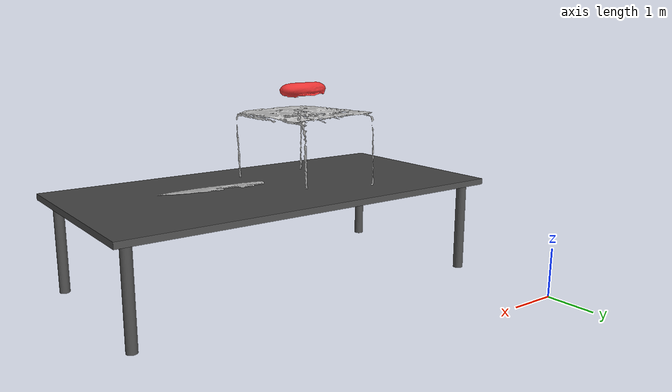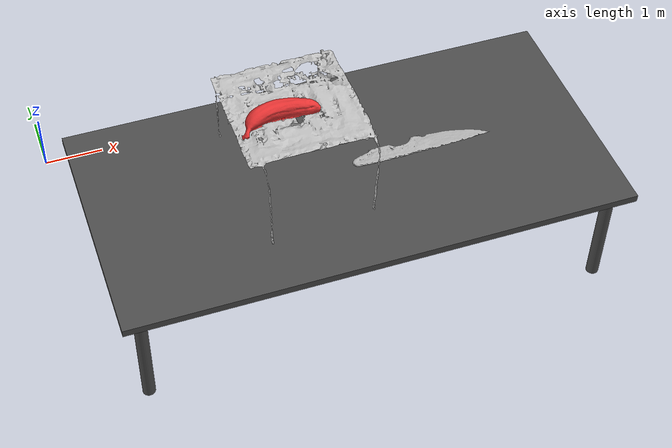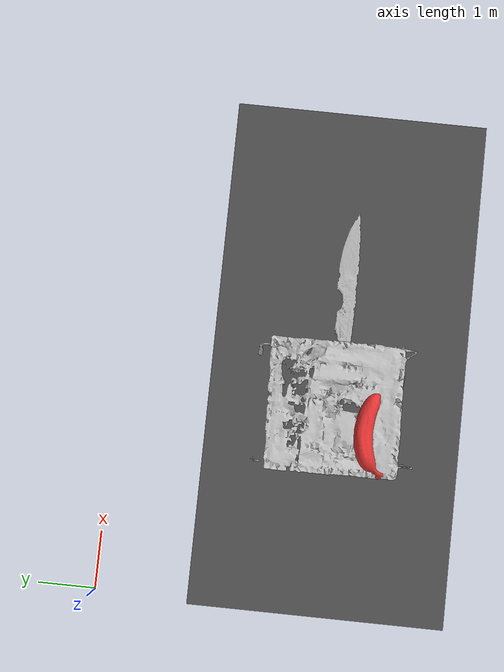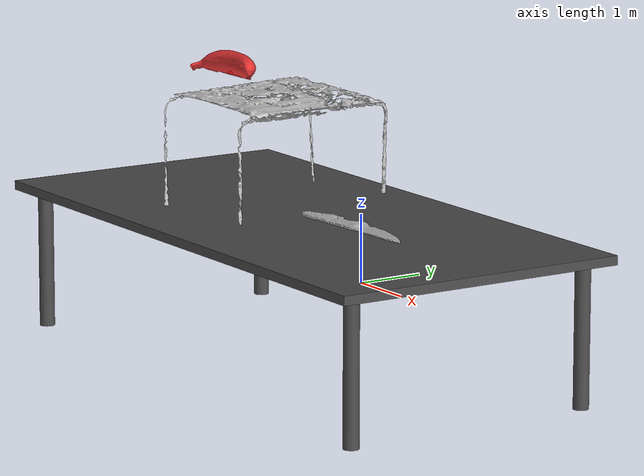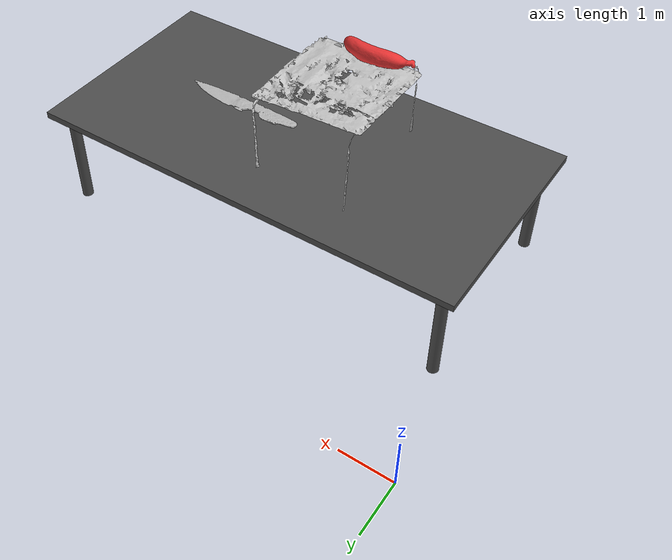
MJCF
<mujoco model="table_knife_strawberry">
  <compiler
      meshdir=""
      angle="radian"
      coordinate="local"
      strippath="false"
      discardvisual="false"
      inertiafromgeom="true" />

  <option gravity="0 0 -9.81"
          integrator="RK4"
          timestep="0.001"
          cone="pyramidal"
          impratio="5"
          tolerance="1e-8">
    <flag warmstart="enable"/>
  </option>

  <asset>
    <texture name="texplane" type="2d" builtin="checker" width="512" height="512"
             rgb1="0.82 0.84 0.87" rgb2="0.92 0.93 0.95"/>
    <material name="matplane" texture="texplane" texrepeat="4 4" reflectance="0.1"/>
    <!-- Replace these with your actual mesh paths -->
    <mesh name="table_mesh"      file="meshes/table.stl"/>
    <mesh name="knife_mesh"      file="meshes/knife.stl"/>
    <mesh name="strawberry_mesh" file="meshes/banana.stl"/>

    <material name="mat_table"      rgba="0.75 0.75 0.75 1"/>
    <material name="mat_knife"      rgba="0.70 0.70 0.70 1"/>
    <material name="mat_strawberry" rgba="0.90 0.20 0.20 1"/>
  </asset>

  <default>
    <!-- Default contact settings (copied from your file) -->
    <geom friction="2.5 1 1"
          solref="0.002 1"
          solimp="0.95 0.99 0.001"
          condim="4"
          contype="1"
          conaffinity="1"/>
  </default>

  <worldbody>

    <!-- TABLE (typically static)  -->

    <light name="fill_light" pos="-1.0 -1.2 1.2" dir="0.6 0.6 -1" directional="true" diffuse="0.6 0.6 0.6"/>

    <body name="table_base" pos="4.2 -3.7 2.1" quat="1 0 0 0">

      <geom name="table" type="box" size="4.0000 2.0000 0.0600" rgba="0.3 0.3 0.3 1" mass="10.0" condim="3"/>

      <geom name="leg1" type="cylinder" pos="-3.7000 1.7000 -0.9800" size="0.1000 0.9200" rgba="0.3 0.3 0.3 1"/>
      <geom name="leg2" type="cylinder" pos="3.7000 1.7000 -0.9800" size="0.1000 0.9200" rgba="0.3 0.3 0.3 1"/>
      <geom name="leg3" type="cylinder" pos="-3.7000 -1.7000 -0.9800" size="0.1000 0.9200" rgba="0.3 0.3 0.3 1"/>
      <geom name="leg4" type="cylinder" pos="3.7000 -1.7000 -0.9800" size="0.1000 0.9200" rgba="0.3 0.3 0.3 1"/>
    </body>

    <body name="table"
          pos="3.45 -3.7 2.86"
          quat="1 0 0 0">
      <!-- Visual mesh: no collision -->
	  <geom name="table_visual"
		type="mesh"
		mesh="table_mesh"
		material="mat_table"
		contype="0"
		conaffinity="0"
		group="1"/>

	  <!-- Collision mesh -->
	  <geom name="table_collision"
		type="mesh"
		mesh="table_mesh"
		material="mat_table"
		contype="1"
		conaffinity="1"
		group="0"
		rgba="0.6 0.6 0.6 1"/>
    </body>

    <!-- KNIFE (movable by default)-->
    <body name="knife"
          pos="5.45 -3.7 2.26"
          quat="1 0 0 0">
      <!-- If your knife is manipulated, keep it free. If it is attached to a robot, remove this free joint. -->
      <joint name="knife_free" type="free" damping="0.5" armature="0.001"/>

      <!-- Rough inertial; update with your real knife mass/inertia if known -->
      <inertial pos="0 0 0" mass="0.10" diaginertia="0.0002 0.0002 0.0002"/>

      <!-- Visual mesh: no collision -->
      <geom name="knife_visual"
            type="mesh"
            mesh="knife_mesh"
            material="mat_knife"
            contype="0"
            conaffinity="0"
            group="1"/>

      <!-- Collision proxies: use 1–2 thin boxes (fast + stable). Edit to match your knife. -->
      <geom name="knife_collision_handle"
            type="box"
            pos="-0.08 0 0"
            quat="1 0 0 0"
            size="0.06 0.012 0.012"
            condim="3"
            rgba="1 0 0 0"/>

      <geom name="knife_collision_blade"
            type="box"
            pos="0.08 0 0"
            quat="1 0 0 0"
            size="0.10 0.008 0.002"
            condim="3"
            rgba="1 0 0 0"/>
    </body>

    <!-- STRAWBERRY (movable)      -->
    <!-- pos="3.1 -4.1 3.6" -->
    <body name="strawberry"
          pos="3.1 -4.1 3.9"
          quat="1 0 0 0">
      <joint name="strawberry_free" type="free" damping="0.5" armature="0.001"/>

      <!-- Rough inertial; update if you know mass/inertia -->
      <inertial pos="0 0 0" mass="0.03" diaginertia="0.00008 0.00008 0.00008"/>

      <!-- Visual mesh: no collision -->
      <geom name="strawberry_visual"
            type="mesh"
            mesh="strawberry_mesh"
            material="mat_strawberry"
            contype="0"
            conaffinity="0"
            group="1"/>

      <!-- Collision: simplest is a sphere/ellipsoid proxy (stable).
           If you want mesh collision, change type="mesh" mesh="strawberry_mesh". -->
	<geom name="strawberry_collision"
	      type="sphere"
	      size="0.03"
	      pos="0 0 0"
	      contype="1"
	      conaffinity="1"
	      condim="3"
	      friction="1.0 0.01 0.0001"
	      solref="0.02 1"
	      solimp="0.9 0.95 0.001"
	      margin="0.001"
	      rgba="1 0 0 0.35"/>
    </body>

  </worldbody>
</mujoco>
